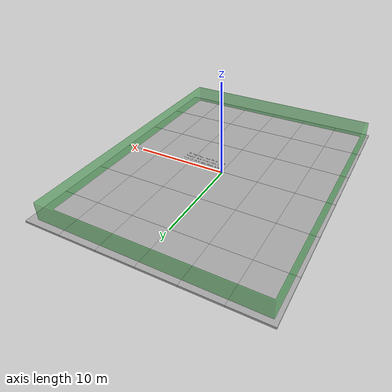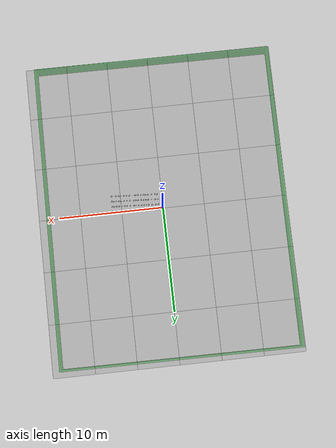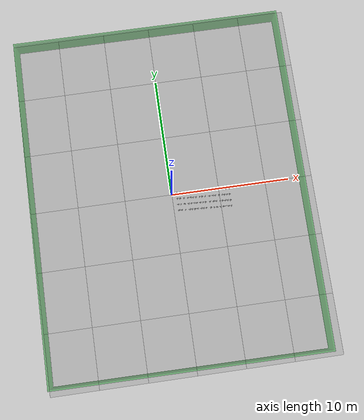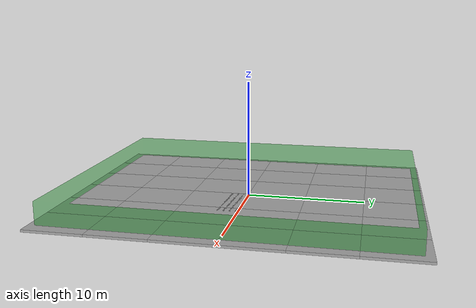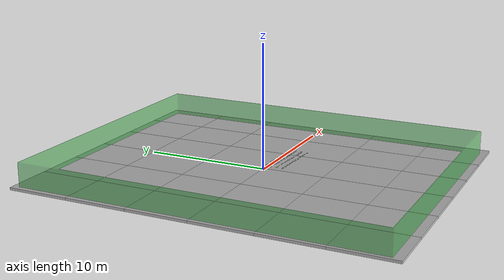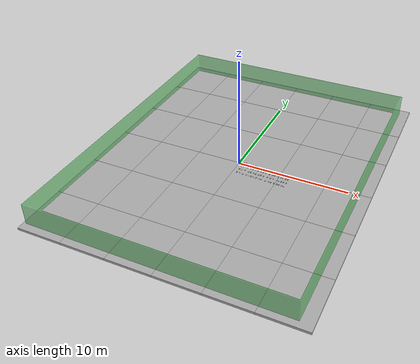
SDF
<sdf version="1.6">
 <world name="default">
  <light name="sun" type="directional">
   <pose>0 0 10 0 -0 0</pose>
   <diffuse>0.8 0.8 0.8 1</diffuse>
   <specular>0.2 0.2 0.2 1</specular>
   <attenuation>
    <range>1000</range>
    <constant>0.9</constant>
    <linear>0.01</linear>
    <quadratic>0.001</quadratic>
   </attenuation>
   <direction>-0.5 0.1 -0.9</direction>
  </light>
  <physics name="default_physics" default="0" type="ode">
   <max_step_size>0.01</max_step_size>
   <real_time_factor>1</real_time_factor>
   <real_time_update_rate>100</real_time_update_rate>
  </physics>
  <gravity>0 0 -9.8</gravity>
  <magnetic_field>6e-06 2.3e-05 -4.2e-05</magnetic_field>
  <atmosphere type="adiabatic"/>
  <scene><ambient>0.4 0.4 0.4 1</ambient><background>0.7 0.7 0.7 1</background><shadows>1</shadows></scene>
  <spherical_coordinates>
   <surface_model>EARTH_WGS84</surface_model>
   <latitude_deg>0</latitude_deg>
   <longitude_deg>0</longitude_deg>
   <elevation>0</elevation>
   <heading_deg>0</heading_deg>
  </spherical_coordinates>
  <model name="mud_box">
   <static>1</static>
   <link name="link">
    <collision name="collision"><geometry><box><size>8 10 0.2</size></box></geometry></collision>
    <visual name="visual_1">
     <pose>-2 2.5 0 0 -0 0</pose>
     <cast_shadows>0</cast_shadows>
     <geometry><box><size>4 5 0.2</size></box></geometry>
     <material>
      <script>
       <uri>model://mud_box/materials/scripts</uri>
       <uri>model://mud_box/materials/textures</uri>
       <name>vrc/mud</name>
      </script>
     </material>
    </visual>
    <visual name="visual_2">
     <pose>2 2.5 0 0 -0 0</pose>
     <cast_shadows>0</cast_shadows>
     <geometry><box><size>4 5 0.2</size></box></geometry>
     <material>
      <script>
       <uri>model://mud_box/materials/scripts</uri>
       <uri>model://mud_box/materials/textures</uri>
       <name>vrc/mud</name>
      </script>
     </material>
    </visual>
    <visual name="visual_3">
     <pose>2 -2.5 0 0 -0 0</pose>
     <cast_shadows>0</cast_shadows>
     <geometry><box><size>4 5 0.2</size></box></geometry>
     <material>
      <script>
       <uri>model://mud_box/materials/scripts</uri>
       <uri>model://mud_box/materials/textures</uri>
       <name>vrc/mud</name>
      </script>
     </material>
    </visual>
    <visual name="visual_4">
     <pose>-2 -2.5 0 0 -0 0</pose>
     <cast_shadows>0</cast_shadows>
     <geometry><box><size>4 5 0.2</size></box></geometry>
     <material>
      <script>
       <uri>model://mud_box/materials/scripts</uri>
       <uri>model://mud_box/materials/textures</uri>
       <name>vrc/mud</name>
      </script>
     </material>
    </visual>
   </link>
  </model>
  <model name="mud_box_clone">
   <static>1</static>
   <link name="link">
    <collision name="collision"><geometry><box><size>8 10 0.2</size></box></geometry></collision>
    <visual name="visual_1">
     <pose>-2 2.5 0 0 -0 0</pose>
     <cast_shadows>0</cast_shadows>
     <geometry><box><size>4 5 0.2</size></box></geometry>
     <material>
      <script>
       <uri>model://mud_box/materials/scripts</uri>
       <uri>model://mud_box/materials/textures</uri>
       <name>vrc/mud</name>
      </script>
     </material>
    </visual>
    <visual name="visual_2">
     <pose>2 2.5 0 0 -0 0</pose>
     <cast_shadows>0</cast_shadows>
     <geometry><box><size>4 5 0.2</size></box></geometry>
     <material>
      <script>
       <uri>model://mud_box/materials/scripts</uri>
       <uri>model://mud_box/materials/textures</uri>
       <name>vrc/mud</name>
      </script>
     </material>
    </visual>
    <visual name="visual_3">
     <pose>2 -2.5 0 0 -0 0</pose>
     <cast_shadows>0</cast_shadows>
     <geometry><box><size>4 5 0.2</size></box></geometry>
     <material>
      <script>
       <uri>model://mud_box/materials/scripts</uri>
       <uri>model://mud_box/materials/textures</uri>
       <name>vrc/mud</name>
      </script>
     </material>
    </visual>
    <visual name="visual_4">
     <pose>-2 -2.5 0 0 -0 0</pose>
     <cast_shadows>0</cast_shadows>
     <geometry><box><size>4 5 0.2</size></box></geometry>
     <material>
      <script>
       <uri>model://mud_box/materials/scripts</uri>
       <uri>model://mud_box/materials/textures</uri>
       <name>vrc/mud</name>
      </script>
     </material>
    </visual>
   </link>
   <pose>8 0 0 0 -0 0</pose>
  </model>
  <model name="mud_box_clone_0">
   <static>1</static>
   <link name="link">
    <collision name="collision"><geometry><box><size>8 10 0.2</size></box></geometry></collision>
    <visual name="visual_1">
     <pose>-2 2.5 0 0 -0 0</pose>
     <cast_shadows>0</cast_shadows>
     <geometry><box><size>4 5 0.2</size></box></geometry>
     <material>
      <script>
       <uri>model://mud_box/materials/scripts</uri>
       <uri>model://mud_box/materials/textures</uri>
       <name>vrc/mud</name>
      </script>
     </material>
    </visual>
    <visual name="visual_2">
     <pose>2 2.5 0 0 -0 0</pose>
     <cast_shadows>0</cast_shadows>
     <geometry><box><size>4 5 0.2</size></box></geometry>
     <material>
      <script>
       <uri>model://mud_box/materials/scripts</uri>
       <uri>model://mud_box/materials/textures</uri>
       <name>vrc/mud</name>
      </script>
     </material>
    </visual>
    <visual name="visual_3">
     <pose>2 -2.5 0 0 -0 0</pose>
     <cast_shadows>0</cast_shadows>
     <geometry><box><size>4 5 0.2</size></box></geometry>
     <material>
      <script>
       <uri>model://mud_box/materials/scripts</uri>
       <uri>model://mud_box/materials/textures</uri>
       <name>vrc/mud</name>
      </script>
     </material>
    </visual>
    <visual name="visual_4">
     <pose>-2 -2.5 0 0 -0 0</pose>
     <cast_shadows>0</cast_shadows>
     <geometry><box><size>4 5 0.2</size></box></geometry>
     <material>
      <script>
       <uri>model://mud_box/materials/scripts</uri>
       <uri>model://mud_box/materials/textures</uri>
       <name>vrc/mud</name>
      </script>
     </material>
    </visual>
   </link>
   <pose>0 -10 0 0 -0 0</pose>
  </model>
  <model name="mud_box_clone_1">
   <static>1</static>
   <link name="link">
    <collision name="collision"><geometry><box><size>8 10 0.2</size></box></geometry></collision>
    <visual name="visual_1">
     <pose>-2 2.5 0 0 -0 0</pose>
     <cast_shadows>0</cast_shadows>
     <geometry><box><size>4 5 0.2</size></box></geometry>
     <material>
      <script>
       <uri>model://mud_box/materials/scripts</uri>
       <uri>model://mud_box/materials/textures</uri>
       <name>vrc/mud</name>
      </script>
     </material>
    </visual>
    <visual name="visual_2">
     <pose>2 2.5 0 0 -0 0</pose>
     <cast_shadows>0</cast_shadows>
     <geometry><box><size>4 5 0.2</size></box></geometry>
     <material>
      <script>
       <uri>model://mud_box/materials/scripts</uri>
       <uri>model://mud_box/materials/textures</uri>
       <name>vrc/mud</name>
      </script>
     </material>
    </visual>
    <visual name="visual_3">
     <pose>2 -2.5 0 0 -0 0</pose>
     <cast_shadows>0</cast_shadows>
     <geometry><box><size>4 5 0.2</size></box></geometry>
     <material>
      <script>
       <uri>model://mud_box/materials/scripts</uri>
       <uri>model://mud_box/materials/textures</uri>
       <name>vrc/mud</name>
      </script>
     </material>
    </visual>
    <visual name="visual_4">
     <pose>-2 -2.5 0 0 -0 0</pose>
     <cast_shadows>0</cast_shadows>
     <geometry><box><size>4 5 0.2</size></box></geometry>
     <material>
      <script>
       <uri>model://mud_box/materials/scripts</uri>
       <uri>model://mud_box/materials/textures</uri>
       <name>vrc/mud</name>
      </script>
     </material>
    </visual>
   </link>
   <pose>8 -10 0 0 -0 0</pose>
  </model>
  <model name="mud_box_clone_2">
   <static>1</static>
   <link name="link">
    <collision name="collision"><geometry><box><size>8 10 0.2</size></box></geometry></collision>
    <visual name="visual_1">
     <pose>-2 2.5 0 0 -0 0</pose>
     <cast_shadows>0</cast_shadows>
     <geometry><box><size>4 5 0.2</size></box></geometry>
     <material>
      <script>
       <uri>model://mud_box/materials/scripts</uri>
       <uri>model://mud_box/materials/textures</uri>
       <name>vrc/mud</name>
      </script>
     </material>
    </visual>
    <visual name="visual_2">
     <pose>2 2.5 0 0 -0 0</pose>
     <cast_shadows>0</cast_shadows>
     <geometry><box><size>4 5 0.2</size></box></geometry>
     <material>
      <script>
       <uri>model://mud_box/materials/scripts</uri>
       <uri>model://mud_box/materials/textures</uri>
       <name>vrc/mud</name>
      </script>
     </material>
    </visual>
    <visual name="visual_3">
     <pose>2 -2.5 0 0 -0 0</pose>
     <cast_shadows>0</cast_shadows>
     <geometry><box><size>4 5 0.2</size></box></geometry>
     <material>
      <script>
       <uri>model://mud_box/materials/scripts</uri>
       <uri>model://mud_box/materials/textures</uri>
       <name>vrc/mud</name>
      </script>
     </material>
    </visual>
    <visual name="visual_4">
     <pose>-2 -2.5 0 0 -0 0</pose>
     <cast_shadows>0</cast_shadows>
     <geometry><box><size>4 5 0.2</size></box></geometry>
     <material>
      <script>
       <uri>model://mud_box/materials/scripts</uri>
       <uri>model://mud_box/materials/textures</uri>
       <name>vrc/mud</name>
      </script>
     </material>
    </visual>
   </link>
   <pose>8 10 0 0 -0 0</pose>
  </model>
  <model name="mud_box_clone_3">
   <static>1</static>
   <link name="link">
    <collision name="collision"><geometry><box><size>8 10 0.2</size></box></geometry></collision>
    <visual name="visual_1">
     <pose>-2 2.5 0 0 -0 0</pose>
     <cast_shadows>0</cast_shadows>
     <geometry><box><size>4 5 0.2</size></box></geometry>
     <material>
      <script>
       <uri>model://mud_box/materials/scripts</uri>
       <uri>model://mud_box/materials/textures</uri>
       <name>vrc/mud</name>
      </script>
     </material>
    </visual>
    <visual name="visual_2">
     <pose>2 2.5 0 0 -0 0</pose>
     <cast_shadows>0</cast_shadows>
     <geometry><box><size>4 5 0.2</size></box></geometry>
     <material>
      <script>
       <uri>model://mud_box/materials/scripts</uri>
       <uri>model://mud_box/materials/textures</uri>
       <name>vrc/mud</name>
      </script>
     </material>
    </visual>
    <visual name="visual_3">
     <pose>2 -2.5 0 0 -0 0</pose>
     <cast_shadows>0</cast_shadows>
     <geometry><box><size>4 5 0.2</size></box></geometry>
     <material>
      <script>
       <uri>model://mud_box/materials/scripts</uri>
       <uri>model://mud_box/materials/textures</uri>
       <name>vrc/mud</name>
      </script>
     </material>
    </visual>
    <visual name="visual_4">
     <pose>-2 -2.5 0 0 -0 0</pose>
     <cast_shadows>0</cast_shadows>
     <geometry><box><size>4 5 0.2</size></box></geometry>
     <material>
      <script>
       <uri>model://mud_box/materials/scripts</uri>
       <uri>model://mud_box/materials/textures</uri>
       <name>vrc/mud</name>
      </script>
     </material>
    </visual>
   </link>
   <pose>0 10 0 0 -0 0</pose>
  </model>
  <model name="mud_box_clone_4">
   <static>1</static>
   <link name="link">
    <collision name="collision"><geometry><box><size>8 10 0.2</size></box></geometry></collision>
    <visual name="visual_1">
     <pose>-2 2.5 0 0 -0 0</pose>
     <cast_shadows>0</cast_shadows>
     <geometry><box><size>4 5 0.2</size></box></geometry>
     <material>
      <script>
       <uri>model://mud_box/materials/scripts</uri>
       <uri>model://mud_box/materials/textures</uri>
       <name>vrc/mud</name>
      </script>
     </material>
    </visual>
    <visual name="visual_2">
     <pose>2 2.5 0 0 -0 0</pose>
     <cast_shadows>0</cast_shadows>
     <geometry><box><size>4 5 0.2</size></box></geometry>
     <material>
      <script>
       <uri>model://mud_box/materials/scripts</uri>
       <uri>model://mud_box/materials/textures</uri>
       <name>vrc/mud</name>
      </script>
     </material>
    </visual>
    <visual name="visual_3">
     <pose>2 -2.5 0 0 -0 0</pose>
     <cast_shadows>0</cast_shadows>
     <geometry><box><size>4 5 0.2</size></box></geometry>
     <material>
      <script>
       <uri>model://mud_box/materials/scripts</uri>
       <uri>model://mud_box/materials/textures</uri>
       <name>vrc/mud</name>
      </script>
     </material>
    </visual>
    <visual name="visual_4">
     <pose>-2 -2.5 0 0 -0 0</pose>
     <cast_shadows>0</cast_shadows>
     <geometry><box><size>4 5 0.2</size></box></geometry>
     <material>
      <script>
       <uri>model://mud_box/materials/scripts</uri>
       <uri>model://mud_box/materials/textures</uri>
       <name>vrc/mud</name>
      </script>
     </material>
    </visual>
   </link>
   <pose>-8 0 0 0 -0 0</pose>
  </model>
  <model name="mud_box_clone_5">
   <static>1</static>
   <link name="link">
    <collision name="collision"><geometry><box><size>8 10 0.2</size></box></geometry></collision>
    <visual name="visual_1">
     <pose>-2 2.5 0 0 -0 0</pose>
     <cast_shadows>0</cast_shadows>
     <geometry><box><size>4 5 0.2</size></box></geometry>
     <material>
      <script>
       <uri>model://mud_box/materials/scripts</uri>
       <uri>model://mud_box/materials/textures</uri>
       <name>vrc/mud</name>
      </script>
     </material>
    </visual>
    <visual name="visual_2">
     <pose>2 2.5 0 0 -0 0</pose>
     <cast_shadows>0</cast_shadows>
     <geometry><box><size>4 5 0.2</size></box></geometry>
     <material>
      <script>
       <uri>model://mud_box/materials/scripts</uri>
       <uri>model://mud_box/materials/textures</uri>
       <name>vrc/mud</name>
      </script>
     </material>
    </visual>
    <visual name="visual_3">
     <pose>2 -2.5 0 0 -0 0</pose>
     <cast_shadows>0</cast_shadows>
     <geometry><box><size>4 5 0.2</size></box></geometry>
     <material>
      <script>
       <uri>model://mud_box/materials/scripts</uri>
       <uri>model://mud_box/materials/textures</uri>
       <name>vrc/mud</name>
      </script>
     </material>
    </visual>
    <visual name="visual_4">
     <pose>-2 -2.5 0 0 -0 0</pose>
     <cast_shadows>0</cast_shadows>
     <geometry><box><size>4 5 0.2</size></box></geometry>
     <material>
      <script>
       <uri>model://mud_box/materials/scripts</uri>
       <uri>model://mud_box/materials/textures</uri>
       <name>vrc/mud</name>
      </script>
     </material>
    </visual>
   </link>
   <pose>-8 10 0 0 -0 0</pose>
  </model>
  <model name="mud_box_clone_6">
   <static>1</static>
   <link name="link">
    <collision name="collision"><geometry><box><size>8 10 0.2</size></box></geometry></collision>
    <visual name="visual_1">
     <pose>-2 2.5 0 0 -0 0</pose>
     <cast_shadows>0</cast_shadows>
     <geometry><box><size>4 5 0.2</size></box></geometry>
     <material>
      <script>
       <uri>model://mud_box/materials/scripts</uri>
       <uri>model://mud_box/materials/textures</uri>
       <name>vrc/mud</name>
      </script>
     </material>
    </visual>
    <visual name="visual_2">
     <pose>2 2.5 0 0 -0 0</pose>
     <cast_shadows>0</cast_shadows>
     <geometry><box><size>4 5 0.2</size></box></geometry>
     <material>
      <script>
       <uri>model://mud_box/materials/scripts</uri>
       <uri>model://mud_box/materials/textures</uri>
       <name>vrc/mud</name>
      </script>
     </material>
    </visual>
    <visual name="visual_3">
     <pose>2 -2.5 0 0 -0 0</pose>
     <cast_shadows>0</cast_shadows>
     <geometry><box><size>4 5 0.2</size></box></geometry>
     <material>
      <script>
       <uri>model://mud_box/materials/scripts</uri>
       <uri>model://mud_box/materials/textures</uri>
       <name>vrc/mud</name>
      </script>
     </material>
    </visual>
    <visual name="visual_4">
     <pose>-2 -2.5 0 0 -0 0</pose>
     <cast_shadows>0</cast_shadows>
     <geometry><box><size>4 5 0.2</size></box></geometry>
     <material>
      <script>
       <uri>model://mud_box/materials/scripts</uri>
       <uri>model://mud_box/materials/textures</uri>
       <name>vrc/mud</name>
      </script>
     </material>
    </visual>
   </link>
   <pose>-8 -10 0 0 -0 0</pose>
  </model>
  <model name="big_plant">
   <link name="link_0">
    <pose>0 0 0.112 0 -0 0</pose>
    <inertial>
     <mass>1e-08</mass>
     <inertia>
      <ixx>0.166667</ixx>
      <ixy>0</ixy>
      <ixz>0</ixz>
      <iyy>0.166667</iyy>
      <iyz>0</iyz>
      <izz>0.166667</izz>
     </inertia>
    </inertial>
    <visual name="visual">
     <geometry><mesh><uri>model://big_plant/mesh/short_2.stl</uri><scale>0.6 0.6 0.6</scale></mesh></geometry>
     <material>
      <lighting>1</lighting>
      <script><uri>file://media/materials/scripts/gazebo.material</uri><name>Gazebo/Grey</name></script>
      <ambient>0.3 0.3 0.3 1</ambient>
      <diffuse>0.7 0.7 0.7 1</diffuse>
      <specular>0.01 1 0.01 1</specular>
      <emissive>0 1 0 1</emissive>
      <shader type="vertex"><normal_map>__default__</normal_map></shader>
     </material>
    </visual>
   </link>
   <static>1</static>
   <pose>0.5 0 0 0 -0 1.52</pose>
  </model>
  <model name="big_plant_clone">
   <link name="link_0">
    <pose>0 0 0.112 0 -0 0</pose>
    <inertial>
     <mass>1e-08</mass>
     <inertia>
      <ixx>0.166667</ixx>
      <ixy>0</ixy>
      <ixz>0</ixz>
      <iyy>0.166667</iyy>
      <iyz>0</iyz>
      <izz>0.166667</izz>
     </inertia>
    </inertial>
    <visual name="visual">
     <geometry><mesh><uri>model://big_plant/mesh/short_2.stl</uri><scale>0.6 0.6 0.6</scale></mesh></geometry>
     <material>
      <lighting>1</lighting>
      <script><uri>file://media/materials/scripts/gazebo.material</uri><name>Gazebo/Grey</name></script>
      <ambient>0.3 0.3 0.3 1</ambient>
      <diffuse>0.7 0.7 0.7 1</diffuse>
      <specular>0.01 1 0.01 1</specular>
      <emissive>0 1 0 1</emissive>
      <shader type="vertex"><normal_map>__default__</normal_map></shader>
     </material>
    </visual>
   </link>
   <static>1</static>
   <pose>0.5 -0.5 0 0 -0 1.52</pose>
  </model>
  <model name="big_plant_clone_0">
   <link name="link_0">
    <pose>0 0 0.112 0 -0 0</pose>
    <inertial>
     <mass>1e-08</mass>
     <inertia>
      <ixx>0.166667</ixx>
      <ixy>0</ixy>
      <ixz>0</ixz>
      <iyy>0.166667</iyy>
      <iyz>0</iyz>
      <izz>0.166667</izz>
     </inertia>
    </inertial>
    <visual name="visual">
     <geometry><mesh><uri>model://big_plant/mesh/short_2.stl</uri><scale>0.6 0.6 0.6</scale></mesh></geometry>
     <material>
      <lighting>1</lighting>
      <script><uri>file://media/materials/scripts/gazebo.material</uri><name>Gazebo/Grey</name></script>
      <ambient>0.3 0.3 0.3 1</ambient>
      <diffuse>0.7 0.7 0.7 1</diffuse>
      <specular>0.01 1 0.01 1</specular>
      <emissive>0 1 0 1</emissive>
      <shader type="vertex"><normal_map>__default__</normal_map></shader>
     </material>
    </visual>
   </link>
   <static>1</static>
   <pose>0.5 -1 0 0 -0 1.52</pose>
  </model>
  <model name="big_plant_clone_1">
   <link name="link_0">
    <pose>0 0 0.112 0 -0 0</pose>
    <inertial>
     <mass>1e-08</mass>
     <inertia>
      <ixx>0.166667</ixx>
      <ixy>0</ixy>
      <ixz>0</ixz>
      <iyy>0.166667</iyy>
      <iyz>0</iyz>
      <izz>0.166667</izz>
     </inertia>
    </inertial>
    <visual name="visual">
     <geometry><mesh><uri>model://big_plant/mesh/short_2.stl</uri><scale>0.6 0.6 0.6</scale></mesh></geometry>
     <material>
      <lighting>1</lighting>
      <script><uri>file://media/materials/scripts/gazebo.material</uri><name>Gazebo/Grey</name></script>
      <ambient>0.3 0.3 0.3 1</ambient>
      <diffuse>0.7 0.7 0.7 1</diffuse>
      <specular>0.01 1 0.01 1</specular>
      <emissive>0 1 0 1</emissive>
      <shader type="vertex"><normal_map>__default__</normal_map></shader>
     </material>
    </visual>
   </link>
   <static>1</static>
   <pose>0.5 -1.5 0 0 -0 1.52</pose>
  </model>
  <model name="wall_vineyard">
   <pose>-3.33379 -2.27717 1 0 -0 1.56546</pose>
   <static>1</static>
   <link name="link">
    <inertial>
     <mass>50</mass>
     <inertia><ixx>1</ixx><ixy>0</ixy><ixz>0</ixz><iyy>1</iyy><iyz>0</iyz><izz>1</izz></inertia>
    </inertial>
    <collision name="collision">
     <geometry><mesh><uri>model://wall_vineyard/meshes/wall_vineyard.stl</uri></mesh></geometry>
    </collision>
    <visual name="visual">
     <geometry><mesh><uri>model://wall_vineyard/meshes/wall_vineyard.stl</uri></mesh></geometry>
     <material><script><name>Gazebo/GreenTransparent</name><uri>__default__</uri></script></material>
    </visual>
   </link>
  </model>
 </world>
</sdf>
